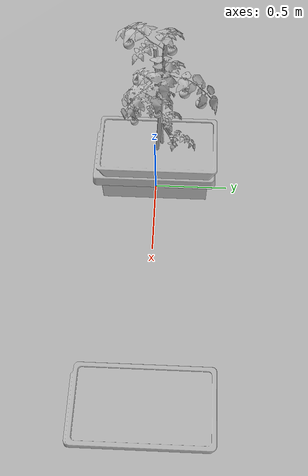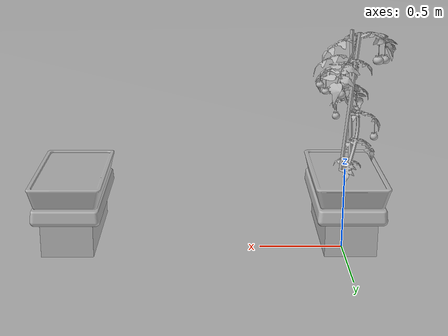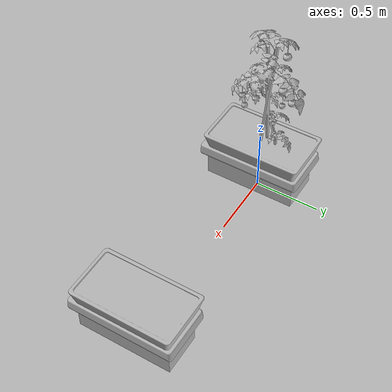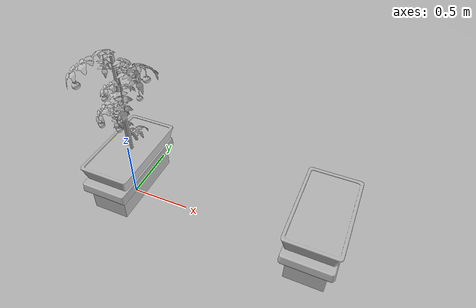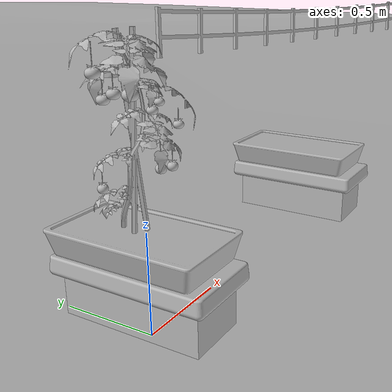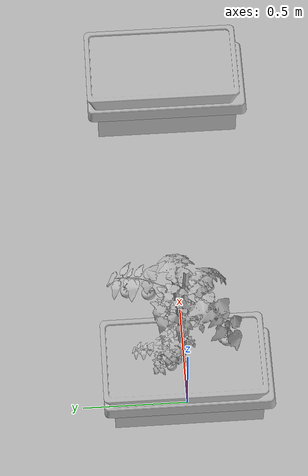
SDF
<sdf version="1.6">
 <world name="default">
  <model name="farm">
   <static>1</static>
   <link name="link">
    <collision name="colision1"><geometry><box><size>2.32 1 1</size></box></geometry></collision>
    <visual name="visual1">
     <cast_shadows>0</cast_shadows>
     <geometry><mesh><uri>model://farm1/meshes/agriculture_world.dae</uri></mesh></geometry>
    </visual>
   </link>
   <pose>1.42405 -8.25 0.15 -0.02 0.029 -0</pose>
  </model>
  <model name="plant00">
   <static>0</static>
   <link name="tomato_plant_link">
    <inertial>
     <mass>20</mass>
     <inertia><ixx>1</ixx><ixy>0</ixy><ixz>0</ixz><iyy>1</iyy><iyz>0</iyz><izz>1</izz></inertia>
    </inertial>
    <visual name="visual">
     <geometry><mesh><uri>model://tomato_plant/meshes/tomato_plant.obj</uri></mesh></geometry>
    </visual>
    <collision name="collision">
     <pose>0 0 0.01 0 -0 0</pose>
     <geometry><cylinder><radius>0.2</radius><length>0.02</length></cylinder></geometry>
    </collision>
   </link>
   <link name="t_link_0">
    <pose>0.176111 0.046061 0.713729 0 -0 0</pose>
    <inertial>
     <mass>0.1</mass>
     <inertia><ixx>1</ixx><ixy>0</ixy><ixz>0</ixz><iyy>1</iyy><iyz>0</iyz><izz>1</izz></inertia>
    </inertial>
    <collision name="collision"><geometry><sphere><radius>0.02</radius></sphere></geometry></collision>
    <visual name="visual">
     <geometry><mesh><uri>model://green_tomato/meshes/green_tomato.obj</uri></mesh></geometry>
    </visual>
   </link>
   <joint name="t_joint_0" type="fixed">
    <parent>tomato_plant_link</parent>
    <child>t_link_0</child>
    <axis>
     <xyz>0 0 1</xyz>
     <use_parent_model_frame>1</use_parent_model_frame>
     <limit><lower>-1e+16</lower><upper>1e+16</upper></limit>
    </axis>
    <sensor name="force_torque" type="force_torque">
     <always_on>1</always_on>
     <update_rate>250</update_rate>
     <plugin name="breakable_0" filename="libBreakableJointPlugin.so">
      <breaking_force_N>20</breaking_force_N>
     </plugin>
    </sensor>
   </joint>
   <link name="t_link_1">
    <pose>0.063172 0.108629 0.685474 0 -0 0</pose>
    <inertial>
     <mass>0.1</mass>
     <inertia><ixx>1</ixx><ixy>0</ixy><ixz>0</ixz><iyy>1</iyy><iyz>0</iyz><izz>1</izz></inertia>
    </inertial>
    <collision name="collision"><geometry><sphere><radius>0.02</radius></sphere></geometry></collision>
    <visual name="visual">
     <geometry><mesh><uri>model://green_tomato/meshes/green_tomato.obj</uri></mesh></geometry>
    </visual>
   </link>
   <joint name="t_joint_1" type="fixed">
    <parent>tomato_plant_link</parent>
    <child>t_link_1</child>
    <axis>
     <xyz>0 0 1</xyz>
     <use_parent_model_frame>1</use_parent_model_frame>
     <limit><lower>-1e+16</lower><upper>1e+16</upper></limit>
    </axis>
    <sensor name="force_torque" type="force_torque">
     <always_on>1</always_on>
     <update_rate>250</update_rate>
     <plugin name="breakable_1" filename="libBreakableJointPlugin.so">
      <breaking_force_N>20</breaking_force_N>
     </plugin>
    </sensor>
   </joint>
   <link name="t_link_2">
    <pose>0.062027 -0.170581 0.614534 0 -0 0</pose>
    <inertial>
     <mass>0.1</mass>
     <inertia><ixx>1</ixx><ixy>0</ixy><ixz>0</ixz><iyy>1</iyy><iyz>0</iyz><izz>1</izz></inertia>
    </inertial>
    <collision name="collision"><geometry><sphere><radius>0.02</radius></sphere></geometry></collision>
    <visual name="visual">
     <geometry><mesh><uri>model://green_tomato/meshes/green_tomato.obj</uri></mesh></geometry>
    </visual>
   </link>
   <joint name="t_joint_2" type="fixed">
    <parent>tomato_plant_link</parent>
    <child>t_link_2</child>
    <axis>
     <xyz>0 0 1</xyz>
     <use_parent_model_frame>1</use_parent_model_frame>
     <limit><lower>-1e+16</lower><upper>1e+16</upper></limit>
    </axis>
    <sensor name="force_torque" type="force_torque">
     <always_on>1</always_on>
     <update_rate>250</update_rate>
     <plugin name="breakable_2" filename="libBreakableJointPlugin.so">
      <breaking_force_N>20</breaking_force_N>
     </plugin>
    </sensor>
   </joint>
   <link name="t_link_3">
    <pose>0.114746 0.0304 0.926457 0 -0 0</pose>
    <inertial>
     <mass>0.1</mass>
     <inertia><ixx>1</ixx><ixy>0</ixy><ixz>0</ixz><iyy>1</iyy><iyz>0</iyz><izz>1</izz></inertia>
    </inertial>
    <collision name="collision"><geometry><sphere><radius>0.02</radius></sphere></geometry></collision>
    <visual name="visual">
     <geometry><mesh><uri>model://yellow_tomato/meshes/yellow_tomato.obj</uri></mesh></geometry>
    </visual>
   </link>
   <joint name="t_joint_3" type="fixed">
    <parent>tomato_plant_link</parent>
    <child>t_link_3</child>
    <axis>
     <xyz>0 0 1</xyz>
     <use_parent_model_frame>1</use_parent_model_frame>
     <limit><lower>-1e+16</lower><upper>1e+16</upper></limit>
    </axis>
    <sensor name="force_torque" type="force_torque">
     <always_on>1</always_on>
     <update_rate>250</update_rate>
     <plugin name="breakable_3" filename="libBreakableJointPlugin.so">
      <breaking_force_N>20</breaking_force_N>
     </plugin>
    </sensor>
   </joint>
   <link name="t_link_4">
    <pose>0.003426 0.147925 0.840454 0 -0 0</pose>
    <inertial>
     <mass>0.1</mass>
     <inertia><ixx>1</ixx><ixy>0</ixy><ixz>0</ixz><iyy>1</iyy><iyz>0</iyz><izz>1</izz></inertia>
    </inertial>
    <collision name="collision"><geometry><sphere><radius>0.02</radius></sphere></geometry></collision>
    <visual name="visual">
     <geometry><mesh><uri>model://yellow_tomato/meshes/yellow_tomato.obj</uri></mesh></geometry>
    </visual>
   </link>
   <joint name="t_joint_4" type="fixed">
    <parent>tomato_plant_link</parent>
    <child>t_link_4</child>
    <axis>
     <xyz>0 0 1</xyz>
     <use_parent_model_frame>1</use_parent_model_frame>
     <limit><lower>-1e+16</lower><upper>1e+16</upper></limit>
    </axis>
    <sensor name="force_torque" type="force_torque">
     <always_on>1</always_on>
     <update_rate>250</update_rate>
     <plugin name="breakable_4" filename="libBreakableJointPlugin.so">
      <breaking_force_N>20</breaking_force_N>
     </plugin>
    </sensor>
   </joint>
   <link name="t_link_5">
    <pose>-0.12391 0.091553 0.91111 0 -0 0</pose>
    <inertial>
     <mass>0.1</mass>
     <inertia><ixx>1</ixx><ixy>0</ixy><ixz>0</ixz><iyy>1</iyy><iyz>0</iyz><izz>1</izz></inertia>
    </inertial>
    <collision name="collision"><geometry><sphere><radius>0.02</radius></sphere></geometry></collision>
    <visual name="visual">
     <geometry><mesh><uri>model://yellow_tomato/meshes/yellow_tomato.obj</uri></mesh></geometry>
    </visual>
   </link>
   <joint name="t_joint_5" type="fixed">
    <parent>tomato_plant_link</parent>
    <child>t_link_5</child>
    <axis>
     <xyz>0 0 1</xyz>
     <use_parent_model_frame>1</use_parent_model_frame>
     <limit><lower>-1e+16</lower><upper>1e+16</upper></limit>
    </axis>
    <sensor name="force_torque" type="force_torque">
     <always_on>1</always_on>
     <update_rate>250</update_rate>
     <plugin name="breakable_5" filename="libBreakableJointPlugin.so">
      <breaking_force_N>20</breaking_force_N>
     </plugin>
    </sensor>
   </joint>
   <link name="t_link_6">
    <pose>-0.23014 -0.132697 0.911579 0 -0 0</pose>
    <inertial>
     <mass>0.1</mass>
     <inertia><ixx>1</ixx><ixy>0</ixy><ixz>0</ixz><iyy>1</iyy><iyz>0</iyz><izz>1</izz></inertia>
    </inertial>
    <collision name="collision"><geometry><sphere><radius>0.03</radius></sphere></geometry></collision>
    <visual name="visual">
     <geometry><mesh><uri>model://red_tomato/meshes/red_tomato.obj</uri></mesh></geometry>
    </visual>
   </link>
   <joint name="t_joint_6" type="fixed">
    <parent>tomato_plant_link</parent>
    <child>t_link_6</child>
    <axis>
     <xyz>0 0 1</xyz>
     <use_parent_model_frame>1</use_parent_model_frame>
     <limit><lower>-1e+16</lower><upper>1e+16</upper></limit>
    </axis>
    <sensor name="force_torque" type="force_torque">
     <always_on>1</always_on>
     <update_rate>250</update_rate>
     <plugin name="breakable_6" filename="libBreakableJointPlugin.so">
      <breaking_force_N>20</breaking_force_N>
     </plugin>
    </sensor>
   </joint>
   <link name="t_link_7">
    <pose>-0.139776 -0.09326 0.950185 0 -0 0</pose>
    <inertial>
     <mass>0.1</mass>
     <inertia><ixx>1</ixx><ixy>0</ixy><ixz>0</ixz><iyy>1</iyy><iyz>0</iyz><izz>1</izz></inertia>
    </inertial>
    <collision name="collision"><geometry><sphere><radius>0.03</radius></sphere></geometry></collision>
    <visual name="visual">
     <geometry><mesh><uri>model://red_tomato/meshes/red_tomato.obj</uri></mesh></geometry>
    </visual>
   </link>
   <joint name="t_joint_7" type="fixed">
    <parent>tomato_plant_link</parent>
    <child>t_link_7</child>
    <axis>
     <xyz>0 0 1</xyz>
     <use_parent_model_frame>1</use_parent_model_frame>
     <limit><lower>-1e+16</lower><upper>1e+16</upper></limit>
    </axis>
    <sensor name="force_torque" type="force_torque">
     <always_on>1</always_on>
     <update_rate>250</update_rate>
     <plugin name="breakable_7" filename="libBreakableJointPlugin.so">
      <breaking_force_N>20</breaking_force_N>
     </plugin>
    </sensor>
   </joint>
   <link name="t_link_8">
    <pose>0.284181 -0.063758 1.01928 0 -0 0</pose>
    <inertial>
     <mass>0.1</mass>
     <inertia><ixx>1</ixx><ixy>0</ixy><ixz>0</ixz><iyy>1</iyy><iyz>0</iyz><izz>1</izz></inertia>
    </inertial>
    <collision name="collision"><geometry><sphere><radius>0.03</radius></sphere></geometry></collision>
    <visual name="visual">
     <geometry><mesh><uri>model://red_tomato/meshes/red_tomato.obj</uri></mesh></geometry>
    </visual>
   </link>
   <joint name="t_joint_8" type="fixed">
    <parent>tomato_plant_link</parent>
    <child>t_link_8</child>
    <axis>
     <xyz>0 0 1</xyz>
     <use_parent_model_frame>1</use_parent_model_frame>
     <limit><lower>-1e+16</lower><upper>1e+16</upper></limit>
    </axis>
    <sensor name="force_torque" type="force_torque">
     <always_on>1</always_on>
     <update_rate>250</update_rate>
     <plugin name="breakable_8" filename="libBreakableJointPlugin.so">
      <breaking_force_N>20</breaking_force_N>
     </plugin>
    </sensor>
   </joint>
   <link name="t_link_9">
    <pose>0.055319 -0.176349 1.06525 0 -0 0</pose>
    <inertial>
     <mass>0.1</mass>
     <inertia><ixx>1</ixx><ixy>0</ixy><ixz>0</ixz><iyy>1</iyy><iyz>0</iyz><izz>1</izz></inertia>
    </inertial>
    <collision name="collision"><geometry><sphere><radius>0.03</radius></sphere></geometry></collision>
    <visual name="visual">
     <geometry><mesh><uri>model://red_tomato/meshes/red_tomato.obj</uri></mesh></geometry>
    </visual>
   </link>
   <joint name="t_joint_9" type="fixed">
    <parent>tomato_plant_link</parent>
    <child>t_link_9</child>
    <axis>
     <xyz>0 0 1</xyz>
     <use_parent_model_frame>1</use_parent_model_frame>
     <limit><lower>-1e+16</lower><upper>1e+16</upper></limit>
    </axis>
    <sensor name="force_torque" type="force_torque">
     <always_on>1</always_on>
     <update_rate>250</update_rate>
     <plugin name="breakable_9" filename="libBreakableJointPlugin.so">
      <breaking_force_N>20</breaking_force_N>
     </plugin>
    </sensor>
   </joint>
   <pose>0.017282 0.008773 0.114287 -0.000539 -0.001402 -2.35322</pose>
  </model>
  <model name="trough00">
   <static>1</static>
   <link name="trough_link">
    <visual name="visual"><geometry><mesh><uri>model://trough/meshes/truf.obj</uri></mesh></geometry></visual>
    <collision name="collision">
     <geometry><mesh><uri>model://trough/meshes/truf.obj</uri></mesh></geometry>
    </collision>
   </link>
   <link name="brick">
    <pose>0 -0.2 0 0 -0 0</pose>
    <visual name="visual"><geometry><mesh><uri>model://trough/meshes/brick.obj</uri></mesh></geometry></visual>
    <collision name="collision">
     <geometry><mesh><uri>model://trough/meshes/brick.obj</uri></mesh></geometry>
    </collision>
   </link>
   <pose>0 0 0.29 1.57 -0 1.57</pose>
  </model>
  <model name="trough10">
   <static>1</static>
   <link name="trough_link">
    <visual name="visual"><geometry><mesh><uri>model://trough/meshes/truf.obj</uri></mesh></geometry></visual>
    <collision name="collision">
     <geometry><mesh><uri>model://trough/meshes/truf.obj</uri></mesh></geometry>
    </collision>
   </link>
   <link name="brick">
    <pose>0 -0.2 0 0 -0 0</pose>
    <visual name="visual"><geometry><mesh><uri>model://trough/meshes/brick.obj</uri></mesh></geometry></visual>
    <collision name="collision">
     <geometry><mesh><uri>model://trough/meshes/brick.obj</uri></mesh></geometry>
    </collision>
   </link>
   <pose>1.62 0 0.29 1.57 -0 1.57</pose>
  </model>
 </world>
</sdf>
